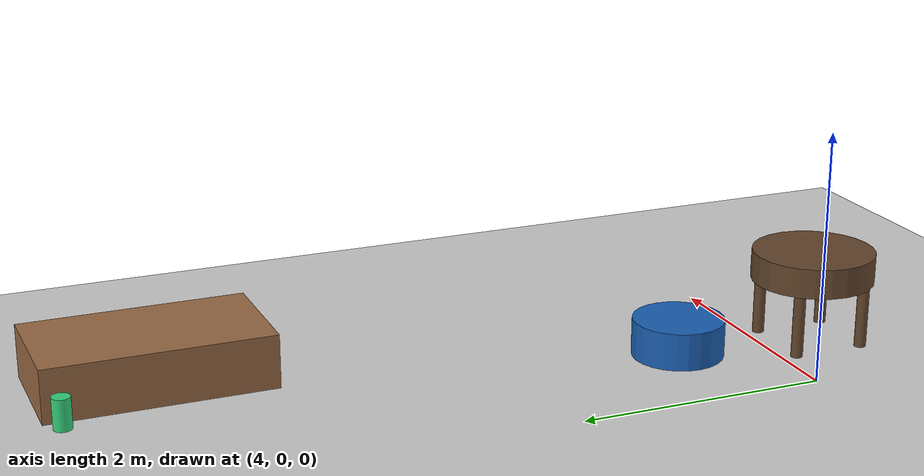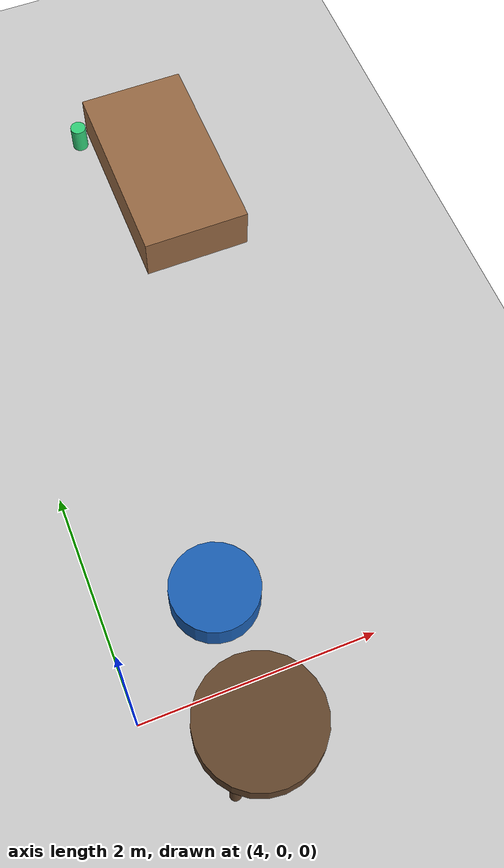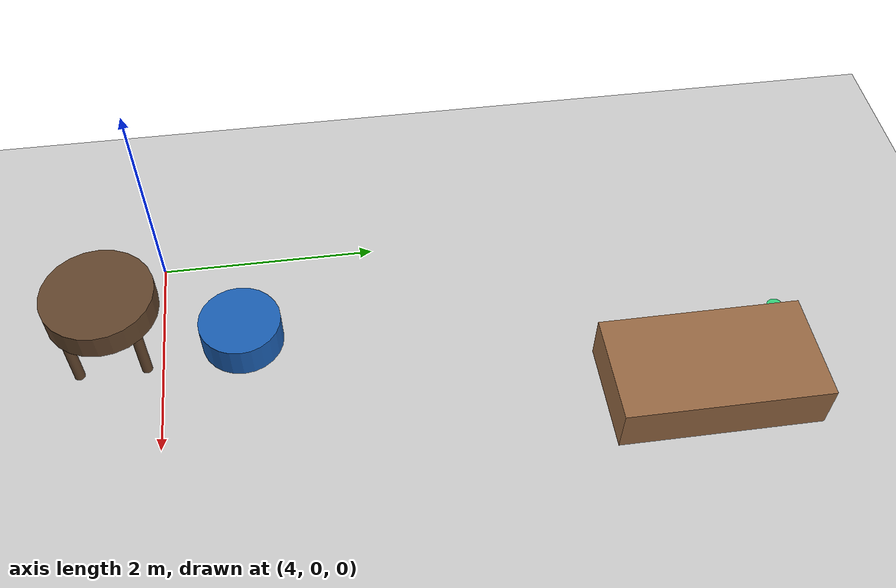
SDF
<sdf version="1.7">
 <world name="default">
  <model name="ground_plane">
   <static>1</static>
   <link name="link">
    <collision name="collision">
     <geometry><plane><normal>0 0 1</normal><size>100 100</size></plane></geometry>
     <surface><friction><ode><mu>100</mu><mu2>50</mu2></ode></friction></surface>
    </collision>
    <visual name="visual">
     <cast_shadows>0</cast_shadows>
     <geometry><plane><normal>0 0 1</normal><size>100 100</size></plane></geometry>
     <material>
      <script><uri>file://media/materials/scripts/gazebo.material</uri><name>Gazebo/Grey</name></script>
     </material>
    </visual>
   </link>
  </model>
  <model name="lv_lajitong">
   <link name="link">
    <inertial>
     <mass>1</mass>
     <inertia><ixx>0.145833</ixx><ixy>0</ixy><ixz>0</ixz><iyy>0.145833</iyy><iyz>0</iyz><izz>0.125</izz></inertia>
    </inertial>
    <visual name="visual">
     <geometry><cylinder><radius>0.0738659</radius><length>0.256539</length></cylinder></geometry>
     <material>
      <script><name>Gazebo/Grey</name><uri>file://media/materials/scripts/gazebo.material</uri></script>
      <shader type="pixel"><normal_map>__default__</normal_map></shader>
      <ambient>0.2 0.82 0.478 1</ambient>
      <diffuse>0.7 0.7 0.7 1</diffuse>
      <specular>0.01 0.01 0.01 1</specular>
      <emissive>0 0 0 1</emissive>
     </material>
    </visual>
    <collision name="collision">
     <geometry><cylinder><radius>0.073866</radius><length>0.256539</length></cylinder></geometry>
     <surface>
      <friction>
       <ode><mu>1</mu><mu2>1</mu2><fdir1>0 0 0</fdir1><slip1>0</slip1><slip2>0</slip2></ode>
       <torsional>
        <coefficient>1</coefficient>
        <patch_radius>0</patch_radius>
        <surface_radius>0</surface_radius>
        <use_patch_radius>1</use_patch_radius>
        <ode><slip>0</slip></ode>
       </torsional>
      </friction>
      <bounce><restitution_coefficient>0</restitution_coefficient><threshold>1e+06</threshold></bounce>
      <contact>
       <collide_without_contact>0</collide_without_contact>
       <collide_without_contact_bitmask>1</collide_without_contact_bitmask>
       <collide_bitmask>1</collide_bitmask>
       <ode>
        <soft_cfm>0</soft_cfm>
        <soft_erp>0.2</soft_erp>
        <kp>1e+13</kp>
        <kd>1</kd>
        <max_vel>0.01</max_vel>
        <min_depth>0</min_depth>
       </ode>
       <bullet>
        <split_impulse>1</split_impulse>
        <split_impulse_penetration_threshold>-0.01</split_impulse_penetration_threshold>
        <soft_cfm>0</soft_cfm>
        <soft_erp>0.2</soft_erp>
        <kp>1e+13</kp>
        <kd>1</kd>
       </bullet>
      </contact>
     </surface>
    </collision>
   </link>
   <static>0</static>
   <pose>5.3447 5.5957 0.12826 0 -0 0</pose>
  </model>
  <model name="lan_canzhaowu1">
   <link name="link">
    <inertial>
     <mass>1</mass>
     <inertia><ixx>0.145833</ixx><ixy>0</ixy><ixz>0</ixz><iyy>0.145833</iyy><iyz>0</iyz><izz>0.125</izz></inertia>
    </inertial>
    <visual name="visual">
     <geometry><cylinder><radius>0.373748</radius><length>0.308137</length></cylinder></geometry>
     <material>
      <script><name>Gazebo/Grey</name><uri>file://media/materials/scripts/gazebo.material</uri></script>
      <shader type="pixel"><normal_map>__default__</normal_map></shader>
      <ambient>0.102 0.373 0.706 1</ambient>
      <diffuse>0.7 0.7 0.7 1</diffuse>
      <specular>0.01 0.01 0.01 1</specular>
      <emissive>0 0 0 1</emissive>
     </material>
    </visual>
    <collision name="collision">
     <geometry><cylinder><radius>0.373748</radius><length>0.308137</length></cylinder></geometry>
     <surface>
      <friction>
       <ode><mu>1</mu><mu2>1</mu2><fdir1>0 0 0</fdir1><slip1>0</slip1><slip2>0</slip2></ode>
       <torsional>
        <coefficient>1</coefficient>
        <patch_radius>0</patch_radius>
        <surface_radius>0</surface_radius>
        <use_patch_radius>1</use_patch_radius>
        <ode><slip>0</slip></ode>
       </torsional>
      </friction>
      <bounce><restitution_coefficient>0</restitution_coefficient><threshold>1e+06</threshold></bounce>
      <contact>
       <collide_without_contact>0</collide_without_contact>
       <collide_without_contact_bitmask>1</collide_without_contact_bitmask>
       <collide_bitmask>1</collide_bitmask>
       <ode>
        <soft_cfm>0</soft_cfm>
        <soft_erp>0.2</soft_erp>
        <kp>1e+13</kp>
        <kd>1</kd>
        <max_vel>0.01</max_vel>
        <min_depth>0</min_depth>
       </ode>
       <bullet>
        <split_impulse>1</split_impulse>
        <split_impulse_penetration_threshold>-0.01</split_impulse_penetration_threshold>
        <soft_cfm>0</soft_cfm>
        <soft_erp>0.2</soft_erp>
        <kp>1e+13</kp>
        <kd>1</kd>
       </bullet>
      </contact>
     </surface>
    </collision>
   </link>
   <static>0</static>
   <pose>4.91793 0.727272 0.154059 0 -0 0</pose>
  </model>
  <model name="zong_chuang_clone">
   <link name="link">
    <inertial>
     <mass>1</mass>
     <inertia>
      <ixx>0.166667</ixx>
      <ixy>0</ixy>
      <ixz>0</ixz>
      <iyy>0.166667</iyy>
      <iyz>0</iyz>
      <izz>0.166667</izz>
     </inertia>
    </inertial>
    <visual name="visual">
     <geometry><box><size>1 1.83631 0.441286</size></box></geometry>
     <material>
      <script><name>Gazebo/Grey</name><uri>file://media/materials/scripts/gazebo.material</uri></script>
      <shader type="pixel"><normal_map>__default__</normal_map></shader>
      <ambient>0.596 0.416 0.267 1</ambient>
      <diffuse>0.7 0.7 0.7 1</diffuse>
      <specular>0.01 0.01 0.01 1</specular>
      <emissive>0 0 0 1</emissive>
     </material>
    </visual>
    <collision name="collision">
     <geometry><box><size>1 1.83631 0.441286</size></box></geometry>
     <surface>
      <friction>
       <ode><mu>1</mu><mu2>1</mu2><fdir1>0 0 0</fdir1><slip1>0</slip1><slip2>0</slip2></ode>
       <torsional>
        <coefficient>1</coefficient>
        <patch_radius>0</patch_radius>
        <surface_radius>0</surface_radius>
        <use_patch_radius>1</use_patch_radius>
        <ode><slip>0</slip></ode>
       </torsional>
      </friction>
      <bounce><restitution_coefficient>0</restitution_coefficient><threshold>1e+06</threshold></bounce>
      <contact>
       <collide_without_contact>0</collide_without_contact>
       <collide_without_contact_bitmask>1</collide_without_contact_bitmask>
       <collide_bitmask>1</collide_bitmask>
       <ode>
        <soft_cfm>0</soft_cfm>
        <soft_erp>0.2</soft_erp>
        <kp>1e+13</kp>
        <kd>1</kd>
        <max_vel>0.01</max_vel>
        <min_depth>0</min_depth>
       </ode>
       <bullet>
        <split_impulse>1</split_impulse>
        <split_impulse_penetration_threshold>-0.01</split_impulse_penetration_threshold>
        <soft_cfm>0</soft_cfm>
        <soft_erp>0.2</soft_erp>
        <kp>1e+13</kp>
        <kd>1</kd>
       </bullet>
      </contact>
     </surface>
    </collision>
   </link>
   <static>0</static>
   <pose>5.95625 4.81262 0.220638 -0 -1e-05 0.003563</pose>
  </model>
  <model name="zuozi">
   <link name="link_0">
    <inertial>
     <mass>0.243629</mass>
     <inertia>
      <ixx>0.0164319</ixx>
      <ixy>0</ixy>
      <ixz>0</ixz>
      <iyy>0.0164319</iyy>
      <iyz>0</iyz>
      <izz>0.0304536</izz>
     </inertia>
    </inertial>
    <pose>-0.502062 0.882914 -0.121386 6.3e-05 2.7e-05 0.000849</pose>
    <visual name="visual">
     <geometry><cylinder><radius>0.5</radius><length>0.243632</length></cylinder></geometry>
     <material>
      <lighting>1</lighting>
      <script><uri>file://media/materials/scripts/gazebo.material</uri><name>Gazebo/Grey</name></script>
      <shader type="pixel"><normal_map>__default__</normal_map></shader>
      <emissive>0 0 0 1</emissive>
      <ambient>0.388 0.271 0.173 1</ambient>
      <diffuse>0.7 0.7 0.7 1</diffuse>
      <specular>0.01 0.01 0.01 1</specular>
     </material>
    </visual>
    <collision name="collision">
     <geometry><cylinder><radius>0.5</radius><length>0.243632</length></cylinder></geometry>
     <surface>
      <friction>
       <ode><mu>1</mu><mu2>1</mu2><fdir1>0 0 0</fdir1><slip1>0</slip1><slip2>0</slip2></ode>
       <torsional>
        <coefficient>1</coefficient>
        <patch_radius>0</patch_radius>
        <surface_radius>0</surface_radius>
        <use_patch_radius>1</use_patch_radius>
        <ode><slip>0</slip></ode>
       </torsional>
      </friction>
      <bounce><restitution_coefficient>0</restitution_coefficient><threshold>1e+06</threshold></bounce>
      <contact>
       <collide_without_contact>0</collide_without_contact>
       <collide_without_contact_bitmask>1</collide_without_contact_bitmask>
       <collide_bitmask>1</collide_bitmask>
       <ode>
        <soft_cfm>0</soft_cfm>
        <soft_erp>0.2</soft_erp>
        <kp>1e+13</kp>
        <kd>1</kd>
        <max_vel>0.01</max_vel>
        <min_depth>0</min_depth>
       </ode>
       <bullet>
        <split_impulse>1</split_impulse>
        <split_impulse_penetration_threshold>-0.01</split_impulse_penetration_threshold>
        <soft_cfm>0</soft_cfm>
        <soft_erp>0.2</soft_erp>
        <kp>1e+13</kp>
        <kd>1</kd>
       </bullet>
      </contact>
     </surface>
    </collision>
   </link>
   <link name="link_1">
    <inertial>
     <mass>0.00512769</mass>
     <inertia>
      <ixx>0.00013453</ixx>
      <ixy>0</ixy>
      <ixz>0</ixz>
      <iyy>0.00013453</iyy>
      <iyz>0</iyz>
      <izz>5.92e-06</izz>
     </inertia>
    </inertial>
    <pose>-0.202328 1.18319 -0.521375 6.3e-05 2.7e-05 0.000849</pose>
    <visual name="visual">
     <geometry><cylinder><radius>0.0480543</radius><length>0.55488</length></cylinder></geometry>
     <material>
      <lighting>1</lighting>
      <script><uri>file://media/materials/scripts/gazebo.material</uri><name>Gazebo/Grey</name></script>
      <shader type="pixel"><normal_map>__default__</normal_map></shader>
      <emissive>0 0 0 1</emissive>
      <ambient>0.388 0.271 0.173 1</ambient>
      <diffuse>0.7 0.7 0.7 1</diffuse>
      <specular>0.01 0.01 0.01 1</specular>
     </material>
    </visual>
    <collision name="collision">
     <geometry><cylinder><radius>0.048054</radius><length>0.55488</length></cylinder></geometry>
     <surface>
      <friction>
       <ode><mu>1</mu><mu2>1</mu2><fdir1>0 0 0</fdir1><slip1>0</slip1><slip2>0</slip2></ode>
       <torsional>
        <coefficient>1</coefficient>
        <patch_radius>0</patch_radius>
        <surface_radius>0</surface_radius>
        <use_patch_radius>1</use_patch_radius>
        <ode><slip>0</slip></ode>
       </torsional>
      </friction>
      <bounce><restitution_coefficient>0</restitution_coefficient><threshold>1e+06</threshold></bounce>
      <contact>
       <collide_without_contact>0</collide_without_contact>
       <collide_without_contact_bitmask>1</collide_without_contact_bitmask>
       <collide_bitmask>1</collide_bitmask>
       <ode>
        <soft_cfm>0</soft_cfm>
        <soft_erp>0.2</soft_erp>
        <kp>1e+13</kp>
        <kd>1</kd>
        <max_vel>0.01</max_vel>
        <min_depth>0</min_depth>
       </ode>
       <bullet>
        <split_impulse>1</split_impulse>
        <split_impulse_penetration_threshold>-0.01</split_impulse_penetration_threshold>
        <soft_cfm>0</soft_cfm>
        <soft_erp>0.2</soft_erp>
        <kp>1e+13</kp>
        <kd>1</kd>
       </bullet>
      </contact>
     </surface>
    </collision>
   </link>
   <link name="link_1_clone">
    <inertial>
     <mass>0.00512769</mass>
     <inertia>
      <ixx>0.00013453</ixx>
      <ixy>0</ixy>
      <ixz>0</ixz>
      <iyy>0.00013453</iyy>
      <iyz>0</iyz>
      <izz>5.92e-06</izz>
     </inertia>
    </inertial>
    <pose>-0.801818 0.582684 -0.521396 0.000126 5.4e-05 0.001698</pose>
    <visual name="visual">
     <geometry><cylinder><radius>0.0480543</radius><length>0.55488</length></cylinder></geometry>
     <material>
      <lighting>1</lighting>
      <script><uri>file://media/materials/scripts/gazebo.material</uri><name>Gazebo/Grey</name></script>
      <shader type="pixel"><normal_map>__default__</normal_map></shader>
      <emissive>0 0 0 1</emissive>
      <ambient>0.388 0.271 0.173 1</ambient>
      <diffuse>0.7 0.7 0.7 1</diffuse>
      <specular>0.01 0.01 0.01 1</specular>
     </material>
    </visual>
    <collision name="collision">
     <geometry><cylinder><radius>0.048054</radius><length>0.55488</length></cylinder></geometry>
     <surface>
      <friction>
       <ode><mu>1</mu><mu2>1</mu2><fdir1>0 0 0</fdir1><slip1>0</slip1><slip2>0</slip2></ode>
       <torsional>
        <coefficient>1</coefficient>
        <patch_radius>0</patch_radius>
        <surface_radius>0</surface_radius>
        <use_patch_radius>1</use_patch_radius>
        <ode><slip>0</slip></ode>
       </torsional>
      </friction>
      <bounce><restitution_coefficient>0</restitution_coefficient><threshold>1e+06</threshold></bounce>
      <contact>
       <collide_without_contact>0</collide_without_contact>
       <collide_without_contact_bitmask>1</collide_without_contact_bitmask>
       <collide_bitmask>1</collide_bitmask>
       <ode>
        <soft_cfm>0</soft_cfm>
        <soft_erp>0.2</soft_erp>
        <kp>1e+13</kp>
        <kd>1</kd>
        <max_vel>0.01</max_vel>
        <min_depth>0</min_depth>
       </ode>
       <bullet>
        <split_impulse>1</split_impulse>
        <split_impulse_penetration_threshold>-0.01</split_impulse_penetration_threshold>
        <soft_cfm>0</soft_cfm>
        <soft_erp>0.2</soft_erp>
        <kp>1e+13</kp>
        <kd>1</kd>
       </bullet>
      </contact>
     </surface>
    </collision>
   </link>
   <link name="link_1_clone_0">
    <inertial>
     <mass>0.00512769</mass>
     <inertia>
      <ixx>0.00013453</ixx>
      <ixy>0</ixy>
      <ixz>0</ixz>
      <iyy>0.00013453</iyy>
      <iyz>0</iyz>
      <izz>5.92e-06</izz>
     </inertia>
    </inertial>
    <pose>-0.201819 0.583194 -0.521413 0.000126 5.4e-05 0.001698</pose>
    <visual name="visual">
     <geometry><cylinder><radius>0.0480543</radius><length>0.55488</length></cylinder></geometry>
     <material>
      <lighting>1</lighting>
      <script><uri>file://media/materials/scripts/gazebo.material</uri><name>Gazebo/Grey</name></script>
      <shader type="pixel"><normal_map>__default__</normal_map></shader>
      <emissive>0 0 0 1</emissive>
      <ambient>0.388 0.271 0.173 1</ambient>
      <diffuse>0.7 0.7 0.7 1</diffuse>
      <specular>0.01 0.01 0.01 1</specular>
     </material>
    </visual>
    <collision name="collision">
     <geometry><cylinder><radius>0.048054</radius><length>0.55488</length></cylinder></geometry>
     <surface>
      <friction>
       <ode><mu>1</mu><mu2>1</mu2><fdir1>0 0 0</fdir1><slip1>0</slip1><slip2>0</slip2></ode>
       <torsional>
        <coefficient>1</coefficient>
        <patch_radius>0</patch_radius>
        <surface_radius>0</surface_radius>
        <use_patch_radius>1</use_patch_radius>
        <ode><slip>0</slip></ode>
       </torsional>
      </friction>
      <bounce><restitution_coefficient>0</restitution_coefficient><threshold>1e+06</threshold></bounce>
      <contact>
       <collide_without_contact>0</collide_without_contact>
       <collide_without_contact_bitmask>1</collide_without_contact_bitmask>
       <collide_bitmask>1</collide_bitmask>
       <ode>
        <soft_cfm>0</soft_cfm>
        <soft_erp>0.2</soft_erp>
        <kp>1e+13</kp>
        <kd>1</kd>
        <max_vel>0.01</max_vel>
        <min_depth>0</min_depth>
       </ode>
       <bullet>
        <split_impulse>1</split_impulse>
        <split_impulse_penetration_threshold>-0.01</split_impulse_penetration_threshold>
        <soft_cfm>0</soft_cfm>
        <soft_erp>0.2</soft_erp>
        <kp>1e+13</kp>
        <kd>1</kd>
       </bullet>
      </contact>
     </surface>
    </collision>
   </link>
   <link name="link_1_clone_1">
    <inertial>
     <mass>0.00512769</mass>
     <inertia>
      <ixx>0.00013453</ixx>
      <ixy>0</ixy>
      <ixz>0</ixz>
      <iyy>0.00013453</iyy>
      <iyz>0</iyz>
      <izz>5.92e-06</izz>
     </inertia>
    </inertial>
    <pose>-0.802328 1.18268 -0.521359 0.000126 5.4e-05 0.001698</pose>
    <visual name="visual">
     <geometry><cylinder><radius>0.0480543</radius><length>0.55488</length></cylinder></geometry>
     <material>
      <lighting>1</lighting>
      <script><uri>file://media/materials/scripts/gazebo.material</uri><name>Gazebo/Grey</name></script>
      <shader type="pixel"><normal_map>__default__</normal_map></shader>
      <emissive>0 0 0 1</emissive>
      <ambient>0.388 0.271 0.173 1</ambient>
      <diffuse>0.7 0.7 0.7 1</diffuse>
      <specular>0.01 0.01 0.01 1</specular>
     </material>
    </visual>
    <collision name="collision">
     <geometry><cylinder><radius>0.048054</radius><length>0.55488</length></cylinder></geometry>
     <surface>
      <friction>
       <ode><mu>1</mu><mu2>1</mu2><fdir1>0 0 0</fdir1><slip1>0</slip1><slip2>0</slip2></ode>
       <torsional>
        <coefficient>1</coefficient>
        <patch_radius>0</patch_radius>
        <surface_radius>0</surface_radius>
        <use_patch_radius>1</use_patch_radius>
        <ode><slip>0</slip></ode>
       </torsional>
      </friction>
      <bounce><restitution_coefficient>0</restitution_coefficient><threshold>1e+06</threshold></bounce>
      <contact>
       <collide_without_contact>0</collide_without_contact>
       <collide_without_contact_bitmask>1</collide_without_contact_bitmask>
       <collide_bitmask>1</collide_bitmask>
       <ode>
        <soft_cfm>0</soft_cfm>
        <soft_erp>0.2</soft_erp>
        <kp>1e+13</kp>
        <kd>1</kd>
        <max_vel>0.01</max_vel>
        <min_depth>0</min_depth>
       </ode>
       <bullet>
        <split_impulse>1</split_impulse>
        <split_impulse_penetration_threshold>-0.01</split_impulse_penetration_threshold>
        <soft_cfm>0</soft_cfm>
        <soft_erp>0.2</soft_erp>
        <kp>1e+13</kp>
        <kd>1</kd>
       </bullet>
      </contact>
     </surface>
    </collision>
   </link>
   <joint name="link_0_JOINT_2" type="fixed">
    <parent>link_0</parent>
    <child>link_1</child>
    <physics>
     <ode><limit><cfm>0</cfm><erp>0.2</erp></limit><suspension><cfm>0</cfm><erp>0.2</erp></suspension></ode>
    </physics>
   </joint>
   <joint name="link_0_JOINT_3" type="fixed">
    <parent>link_0</parent>
    <child>link_1_clone</child>
    <physics>
     <ode><limit><cfm>0</cfm><erp>0.2</erp></limit><suspension><cfm>0</cfm><erp>0.2</erp></suspension></ode>
    </physics>
   </joint>
   <joint name="link_0_JOINT_4" type="fixed">
    <parent>link_0</parent>
    <child>link_1_clone_0</child>
    <physics>
     <ode><limit><cfm>0</cfm><erp>0.2</erp></limit><suspension><cfm>0</cfm><erp>0.2</erp></suspension></ode>
    </physics>
   </joint>
   <joint name="link_0_JOINT_5" type="fixed">
    <parent>link_0</parent>
    <child>link_1</child>
    <physics>
     <ode><limit><cfm>0</cfm><erp>0.2</erp></limit><suspension><cfm>0</cfm><erp>0.2</erp></suspension></ode>
    </physics>
   </joint>
   <joint name="link_0_JOINT_6" type="fixed">
    <parent>link_0</parent>
    <child>link_1_clone</child>
    <physics>
     <ode><limit><cfm>0</cfm><erp>0.2</erp></limit><suspension><cfm>0</cfm><erp>0.2</erp></suspension></ode>
    </physics>
   </joint>
   <joint name="link_0_JOINT_7" type="fixed">
    <parent>link_0</parent>
    <child>link_1_clone_1</child>
    <physics>
     <ode><limit><cfm>0</cfm><erp>0.2</erp></limit><suspension><cfm>0</cfm><erp>0.2</erp></suspension></ode>
    </physics>
   </joint>
   <static>0</static>
   <pose>5.32014 -1.32741 0.761556 -6.3e-05 -2.7e-05 -0.000849</pose>
  </model>
 </world>
</sdf>
